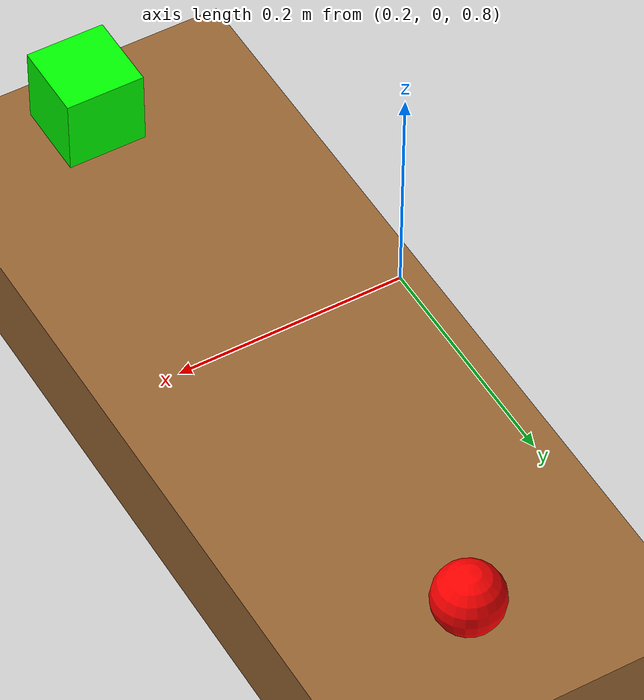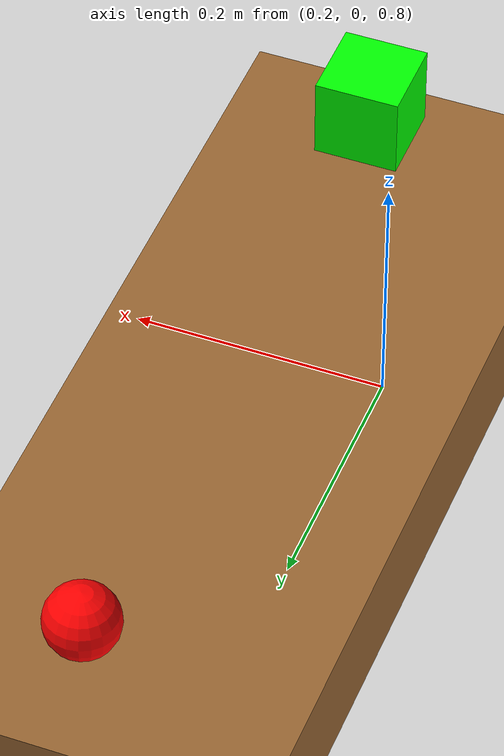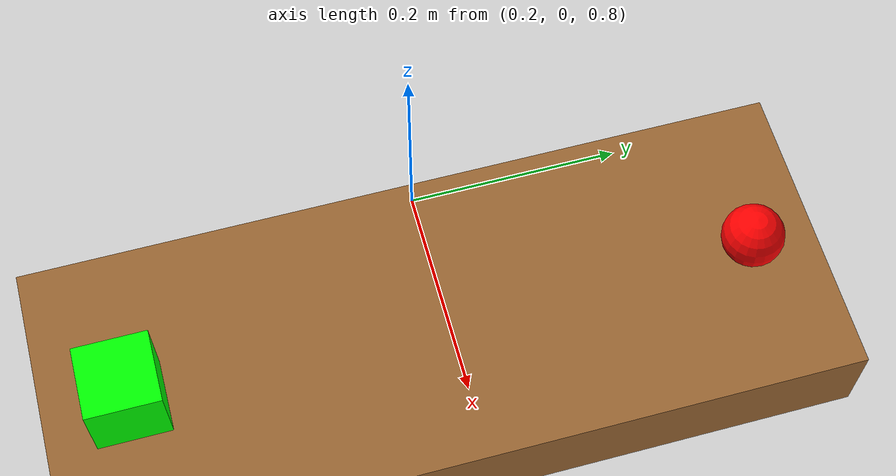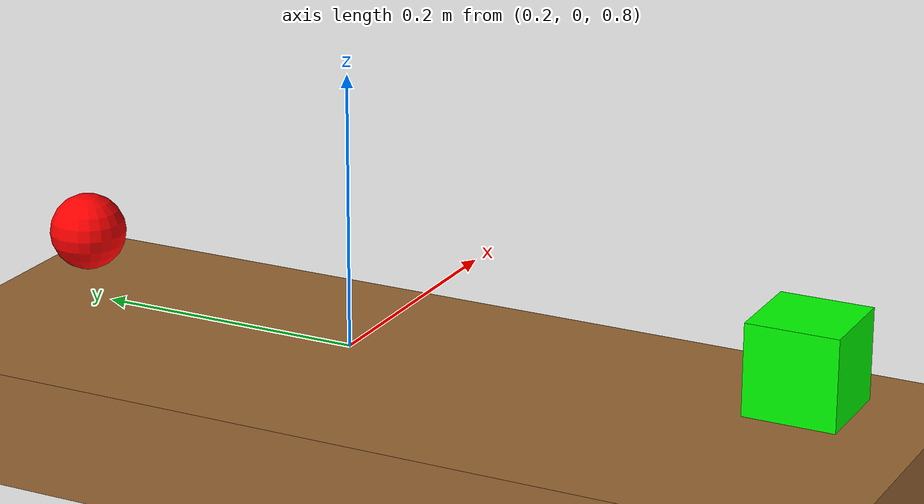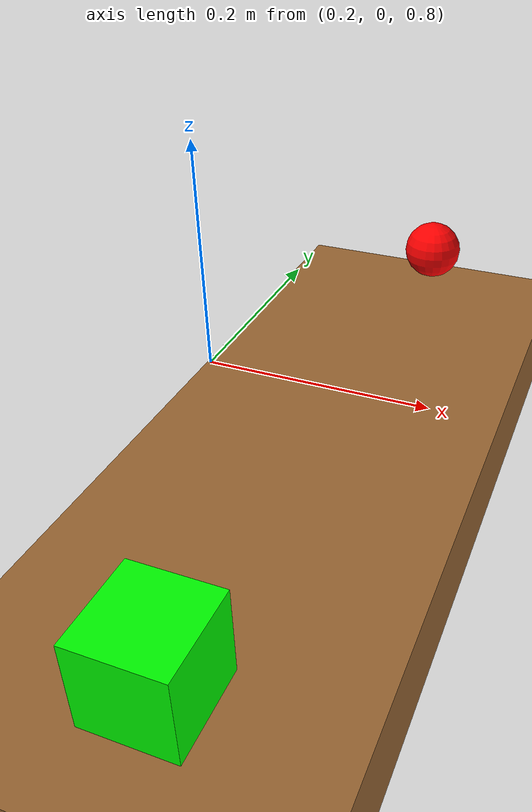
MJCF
<mujoco>
  <worldbody>
    <body name="table" pos="0.65 0 0.7">
      <geom name="table_top" type="box" size="0.5 0.8 0.045" rgba="0.6 0.4 0.2 1" contype="1" conaffinity="1"/>
    </body>

    <body name="sphere" pos="0.32 0.3 0.8">
      <joint type="free"/>
      <geom type="sphere" size="0.03" rgba="1 0 0 1" mass="0.3" contype="1" conaffinity="1"/>
    </body>

    <body name="cube" pos="0.32 -0.3 0.8">
      <joint type="free"/>
      <geom type="box" size="0.035 0.035 0.035" rgba="0 1 0 1" mass="0.5" contype="1" conaffinity="1"/>
    </body>
  </worldbody>
</mujoco>
